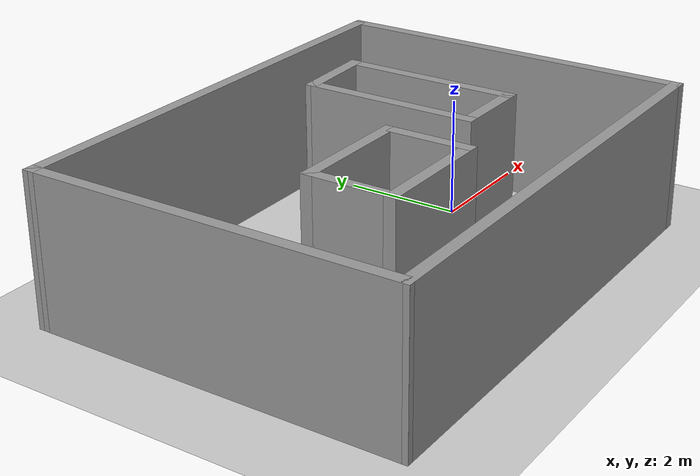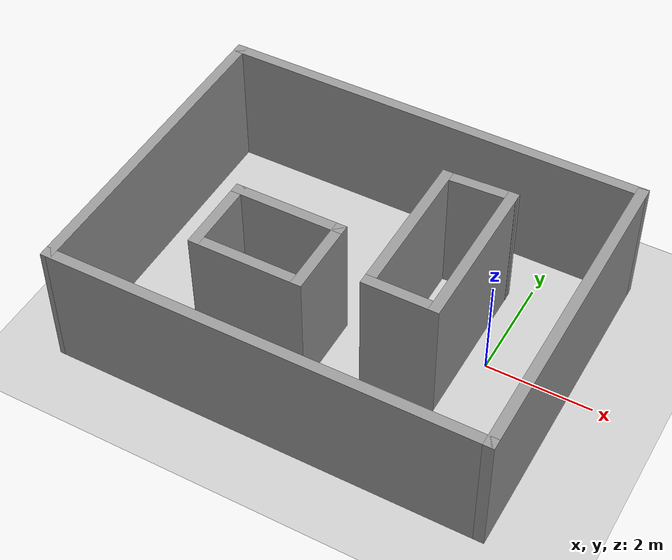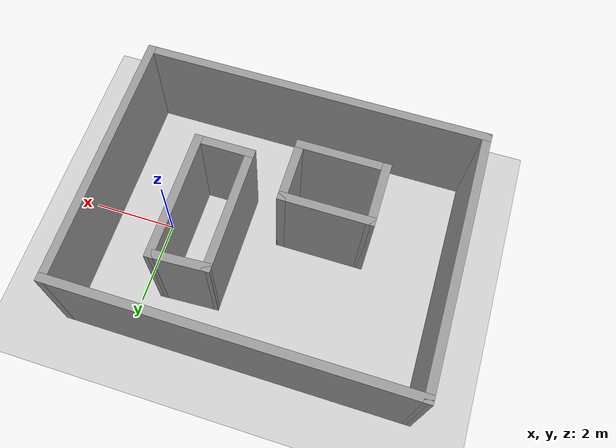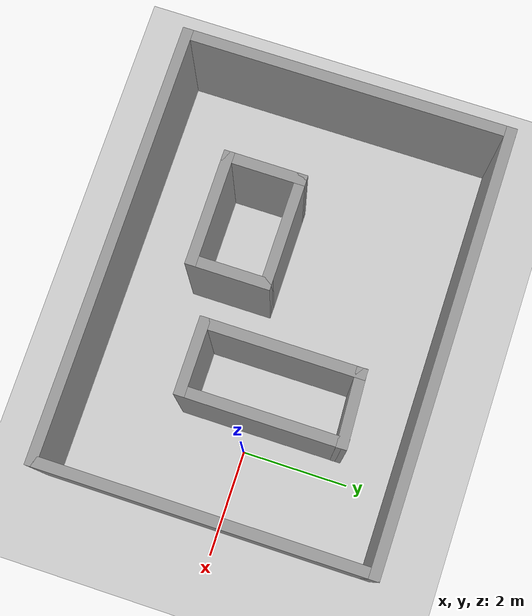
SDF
<sdf version="1.4">
 <world name="__default__">
  <physics type="ode">
   <max_step_size>0.001</max_step_size>
   <real_time_factor>1</real_time_factor>
   <real_time_update_rate>1000</real_time_update_rate>
   <gravity>0 0 -9.8</gravity>
  </physics>
  <scene><ambient>0.4 0.4 0.4 1</ambient><background>0.7 0.7 0.7 1</background><shadows>1</shadows></scene>
  <spherical_coordinates>
   <surface_model>EARTH_WGS84</surface_model>
   <latitude_deg>0</latitude_deg>
   <longitude_deg>0</longitude_deg>
   <elevation>0</elevation>
   <heading_deg>0</heading_deg>
  </spherical_coordinates>
  <model name="ground_plane">
   <static>1</static>
   <link name="link">
    <collision name="collision">
     <geometry><plane><normal>0 0 1</normal><size>100 100</size></plane></geometry>
     <surface><friction><ode><mu>100</mu><mu2>50</mu2></ode></friction></surface>
    </collision>
    <visual name="visual">
     <cast_shadows>0</cast_shadows>
     <geometry><plane><normal>0 0 1</normal><size>100 100</size></plane></geometry>
     <material>
      <script><uri>file://media/materials/scripts/gazebo.material</uri><name>Gazebo/Grey</name></script>
     </material>
    </visual>
    <velocity_decay><linear>0</linear><angular>0</angular></velocity_decay>
   </link>
  </model>
  <model name="simpleMap">
   <link name="Wall_11">
    <collision name="Wall_11_Collision">
     <geometry><box><size>8.24523 0.2 2.5</size></box></geometry>
     <pose>0 0 1.25 0 -0 0</pose>
    </collision>
    <visual name="Wall_11_Visual">
     <pose>0 0 1.25 0 -0 0</pose>
     <geometry><box><size>8.24523 0.2 2.5</size></box></geometry>
     <material>
      <script><uri>file://media/materials/scripts/gazebo.material</uri><name>Gazebo/Grey</name></script>
     </material>
    </visual>
    <velocity_decay><linear>0</linear><angular>0</angular></velocity_decay>
    <pose>-2.58578 -3.21941 0 0 -0 0</pose>
   </link>
   <link name="Wall_12">
    <collision name="Wall_12_Collision">
     <geometry><box><size>6.25122 0.2 2.5</size></box></geometry>
     <pose>0 0 1.25 0 -0 0</pose>
    </collision>
    <visual name="Wall_12_Visual">
     <pose>0 0 1.25 0 -0 0</pose>
     <geometry><box><size>6.25122 0.2 2.5</size></box></geometry>
     <material>
      <script><uri>file://media/materials/scripts/gazebo.material</uri><name>Gazebo/Grey</name></script>
     </material>
    </visual>
    <velocity_decay><linear>0</linear><angular>0</angular></velocity_decay>
    <pose>1.43683 -0.193805 0 0 -0 1.5708</pose>
   </link>
   <link name="Wall_13">
    <collision name="Wall_13_Collision">
     <geometry><box><size>8.25841 0.2 2.5</size></box></geometry>
     <pose>0 0 1.25 0 -0 0</pose>
    </collision>
    <visual name="Wall_13_Visual">
     <pose>0 0 1.25 0 -0 0</pose>
     <geometry><box><size>8.25841 0.2 2.5</size></box></geometry>
     <material>
      <script><uri>file://media/materials/scripts/gazebo.material</uri><name>Gazebo/Grey</name></script>
     </material>
    </visual>
    <velocity_decay><linear>0</linear><angular>0</angular></velocity_decay>
    <pose>-2.59237 2.8318 0 0 -0 3.14159</pose>
   </link>
   <link name="Wall_14">
    <collision name="Wall_14_Collision">
     <geometry><box><size>6.25123 0.2 2.5</size></box></geometry>
     <pose>0 0 1.25 0 -0 0</pose>
    </collision>
    <visual name="Wall_14_Visual">
     <pose>0 0 1.25 0 -0 0</pose>
     <geometry><box><size>6.25123 0.2 2.5</size></box></geometry>
     <material>
      <script><uri>file://media/materials/scripts/gazebo.material</uri><name>Gazebo/Grey</name></script>
     </material>
    </visual>
    <velocity_decay><linear>0</linear><angular>0</angular></velocity_decay>
    <pose>-6.61499 -0.193805 0 0 0 -1.56862</pose>
   </link>
   <link name="Wall_16">
    <collision name="Wall_16_Collision">
     <geometry><box><size>1.55361 0.2 2.5</size></box></geometry>
     <pose>0 0 1.25 0 -0 0</pose>
    </collision>
    <visual name="Wall_16_Visual">
     <pose>0 0 1.25 0 -0 0</pose>
     <geometry><box><size>1.55361 0.2 2.5</size></box></geometry>
     <material>
      <script><uri>file://media/materials/scripts/gazebo.material</uri><name>Gazebo/Grey</name></script>
     </material>
    </visual>
    <velocity_decay><linear>0</linear><angular>0</angular></velocity_decay>
    <pose>-4.65268 -1.10598 0 0 -0 1.5708</pose>
   </link>
   <link name="Wall_17">
    <collision name="Wall_17_Collision">
     <geometry><box><size>2.16889 0.2 2.5</size></box></geometry>
     <pose>0 0 1.25 0 -0 0</pose>
    </collision>
    <visual name="Wall_17_Visual">
     <pose>0 0 1.25 0 -0 0</pose>
     <geometry><box><size>2.16889 0.2 2.5</size></box></geometry>
     <material>
      <script><uri>file://media/materials/scripts/gazebo.material</uri><name>Gazebo/Grey</name></script>
     </material>
    </visual>
    <velocity_decay><linear>0</linear><angular>0</angular></velocity_decay>
    <pose>-3.66824 -0.429175 0 0 -0 0</pose>
   </link>
   <link name="Wall_18">
    <collision name="Wall_18_Collision">
     <geometry><box><size>1.55361 0.2 2.5</size></box></geometry>
     <pose>0 0 1.25 0 -0 0</pose>
    </collision>
    <visual name="Wall_18_Visual">
     <pose>0 0 1.25 0 -0 0</pose>
     <geometry><box><size>1.55361 0.2 2.5</size></box></geometry>
     <material>
      <script><uri>file://media/materials/scripts/gazebo.material</uri><name>Gazebo/Grey</name></script>
     </material>
    </visual>
    <velocity_decay><linear>0</linear><angular>0</angular></velocity_decay>
    <pose>-2.68379 -1.10598 0 0 0 -1.5708</pose>
   </link>
   <link name="Wall_19">
    <collision name="Wall_19_Collision">
     <geometry><box><size>2.16889 0.2 2.5</size></box></geometry>
     <pose>0 0 1.25 0 -0 0</pose>
    </collision>
    <visual name="Wall_19_Visual">
     <pose>0 0 1.25 0 -0 0</pose>
     <geometry><box><size>2.16889 0.2 2.5</size></box></geometry>
     <material>
      <script><uri>file://media/materials/scripts/gazebo.material</uri><name>Gazebo/Grey</name></script>
     </material>
    </visual>
    <velocity_decay><linear>0</linear><angular>0</angular></velocity_decay>
    <pose>-3.66824 -1.78279 0 0 -0 3.14159</pose>
   </link>
   <link name="Wall_21">
    <collision name="Wall_21_Collision">
     <geometry><box><size>3.03028 0.2 2.5</size></box></geometry>
     <pose>0 0 1.25 0 -0 0</pose>
    </collision>
    <visual name="Wall_21_Visual">
     <pose>0 0 1.25 0 -0 0</pose>
     <geometry><box><size>3.03028 0.2 2.5</size></box></geometry>
     <material>
      <script><uri>file://media/materials/scripts/gazebo.material</uri><name>Gazebo/Grey</name></script>
     </material>
    </visual>
    <velocity_decay><linear>0</linear><angular>0</angular></velocity_decay>
    <pose>-1.69935 0.186104 0 0 0 -1.5708</pose>
   </link>
   <link name="Wall_22">
    <collision name="Wall_22_Collision">
     <geometry><box><size>1.43056 0.2 2.5</size></box></geometry>
     <pose>0 0 1.25 0 -0 0</pose>
    </collision>
    <visual name="Wall_22_Visual">
     <pose>0 0 1.25 0 -0 0</pose>
     <geometry><box><size>1.43056 0.2 2.5</size></box></geometry>
     <material>
      <script><uri>file://media/materials/scripts/gazebo.material</uri><name>Gazebo/Grey</name></script>
     </material>
    </visual>
    <velocity_decay><linear>0</linear><angular>0</angular></velocity_decay>
    <pose>-1.08407 -1.22904 0 0 -0 0</pose>
   </link>
   <link name="Wall_23">
    <collision name="Wall_23_Collision">
     <geometry><box><size>3.09181 0.2 2.5</size></box></geometry>
     <pose>0 0 1.25 0 -0 0</pose>
    </collision>
    <visual name="Wall_23_Visual">
     <pose>0 0 1.25 0 -0 0</pose>
     <geometry><box><size>3.09181 0.2 2.5</size></box></geometry>
     <material>
      <script><uri>file://media/materials/scripts/gazebo.material</uri><name>Gazebo/Grey</name></script>
     </material>
    </visual>
    <velocity_decay><linear>0</linear><angular>0</angular></velocity_decay>
    <pose>-0.468788 0.216868 0 0 -0 1.5708</pose>
   </link>
   <link name="Wall_24">
    <collision name="Wall_24_Collision">
     <geometry><box><size>1.43209 0.2 2.5</size></box></geometry>
     <pose>0 0 1.25 0 -0 0</pose>
    </collision>
    <visual name="Wall_24_Visual">
     <pose>0 0 1.25 0 -0 0</pose>
     <geometry><box><size>1.43209 0.2 2.5</size></box></geometry>
     <material>
      <script><uri>file://media/materials/scripts/gazebo.material</uri><name>Gazebo/Grey</name></script>
     </material>
    </visual>
    <velocity_decay><linear>0</linear><angular>0</angular></velocity_decay>
    <pose>-1.08407 1.63201 0 0 0 -3.09163</pose>
   </link>
   <static>1</static>
  </model>
  <light name="sun" type="directional">
   <pose>-6 -6 10 0 -0 0</pose>
   <diffuse>0.8 0.8 0.8 1</diffuse>
   <specular>0.2 0.2 0.2 1</specular>
   <attenuation>
    <range>1000</range>
    <constant>0.9</constant>
    <linear>0.01</linear>
    <quadratic>0.001</quadratic>
   </attenuation>
   <direction>-0.5 0.1 -0.9</direction>
  </light>
 </world>
</sdf>
